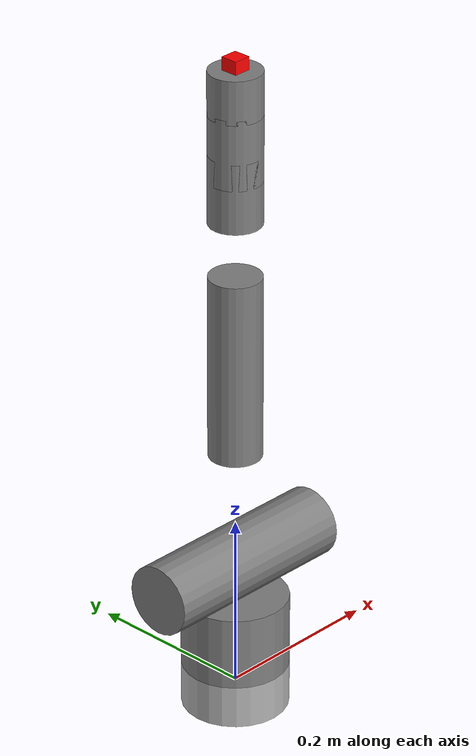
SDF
<?xml version="1.0" ?>
<sdf version="1.6">
  <model name="ur3">
    <link name="base_link">
      <pose>0 0 0 0 0 0</pose>
      <inertial>
        <mass>4.0</mass>
        <inertia>
          <ixx>0.00443333156</ixx>
          <ixy>0</ixy>
          <ixz>0</ixz>
          <iyy>0.00443333156</iyy>
          <iyz>0</iyz>
          <izz>0.0072</izz>
        </inertia>
      </inertial>
      <visual name="base_visual">
        <geometry>
          <cylinder>
            <radius>0.06</radius>
            <length>0.05</length>
          </cylinder>
        </geometry>
        <material>
          <ambient>0.7 0.7 0.7 1.0</ambient>
          <diffuse>0.7 0.7 0.7 1.0</diffuse>
          <specular>0.1 0.1 0.1 1.0</specular>
        </material>
      </visual>
      <collision name="base_collision">
        <geometry>
          <cylinder>
            <radius>0.06</radius>
            <length>0.05</length>
          </cylinder>
        </geometry>
      </collision>
    </link>

    <link name="shoulder_link">
      <pose>0 0 0.0675 0 0 0</pose>
      <inertial>
        <mass>3.7</mass>
        <inertia>
          <ixx>0.010267495893</ixx>
          <ixy>0</ixy>
          <ixz>0</ixz>
          <iyy>0.010267495893</iyy>
          <iyz>0</iyz>
          <izz>0.00666</izz>
        </inertia>
      </inertial>
      <visual name="shoulder_visual">
        <geometry>
          <cylinder>
            <radius>0.06</radius>
            <length>0.085</length>
          </cylinder>
        </geometry>
        <material>
          <ambient>0.5 0.5 0.5 1.0</ambient>
          <diffuse>0.5 0.5 0.5 1.0</diffuse>
          <specular>0.1 0.1 0.1 1.0</specular>
        </material>
      </visual>
      <collision name="shoulder_collision">
        <geometry>
          <cylinder>
            <radius>0.06</radius>
            <length>0.085</length>
          </cylinder>
        </geometry>
      </collision>
    </link>

    <joint name="shoulder_pan_joint" type="revolute">
      <parent>base_link</parent>
      <child>shoulder_link</child>
      <axis>
        <xyz>0 0 1</xyz>
        <limit>
          <lower>-3.14159</lower>
          <upper>3.14159</upper>
          <effort>150.0</effort>
          <velocity>3.14159</velocity>
        </limit>
        <dynamics>
          <damping>0.0</damping>
          <friction>0.0</friction>
        </dynamics>
      </axis>
    </joint>

    <link name="upper_arm_link">
      <pose>0 0 0.1525 0 1.5708 0</pose>
      <inertial>
        <mass>8.393</mass>
        <inertia>
          <ixx>0.22689067591</ixx>
          <ixy>0</ixy>
          <ixz>0</ixz>
          <iyy>0.22689067591</iyy>
          <iyz>0</iyz>
          <izz>0.0151074</izz>
        </inertia>
      </inertial>
      <visual name="upper_arm_visual">
        <geometry>
          <cylinder>
            <radius>0.04</radius>
            <length>0.24</length>
          </cylinder>
        </geometry>
        <material>
          <ambient>0.5 0.5 0.5 1.0</ambient>
          <diffuse>0.5 0.5 0.5 1.0</diffuse>
          <specular>0.1 0.1 0.1 1.0</specular>
        </material>
      </visual>
      <collision name="upper_arm_collision">
        <geometry>
          <cylinder>
            <radius>0.04</radius>
            <length>0.24</length>
          </cylinder>
        </geometry>
      </collision>
    </link>

    <joint name="shoulder_lift_joint" type="revolute">
      <parent>shoulder_link</parent>
      <child>upper_arm_link</child>
      <axis>
        <xyz>0 1 0</xyz>
        <limit>
          <lower>-3.14159</lower>
          <upper>3.14159</upper>
          <effort>150.0</effort>
          <velocity>3.14159</velocity>
        </limit>
        <dynamics>
          <damping>0.0</damping>
          <friction>0.0</friction>
        </dynamics>
      </axis>
    </joint>

    <link name="forearm_link">
      <pose>0 0 0.3925 0 0 0</pose>
      <inertial>
        <mass>2.275</mass>
        <inertia>
          <ixx>0.049443313556</ixx>
          <ixy>0</ixy>
          <ixz>0</ixz>
          <iyy>0.049443313556</iyy>
          <iyz>0</iyz>
          <izz>0.004095</izz>
        </inertia>
      </inertial>
      <visual name="forearm_visual">
        <geometry>
          <cylinder>
            <radius>0.03</radius>
            <length>0.215</length>
          </cylinder>
        </geometry>
        <material>
          <ambient>0.5 0.5 0.5 1.0</ambient>
          <diffuse>0.5 0.5 0.5 1.0</diffuse>
          <specular>0.1 0.1 0.1 1.0</specular>
        </material>
      </visual>
      <collision name="forearm_collision">
        <geometry>
          <cylinder>
            <radius>0.03</radius>
            <length>0.215</length>
          </cylinder>
        </geometry>
      </collision>
    </link>

    <joint name="elbow_joint" type="revolute">
      <parent>upper_arm_link</parent>
      <child>forearm_link</child>
      <axis>
        <xyz>0 1 0</xyz>
        <limit>
          <lower>-3.14159</lower>
          <upper>3.14159</upper>
          <effort>150.0</effort>
          <velocity>3.14159</velocity>
        </limit>
        <dynamics>
          <damping>0.0</damping>
          <friction>0.0</friction>
        </dynamics>
      </axis>
    </joint>

    <link name="wrist_1_link">
      <pose>0 0 0.6025 0 0 0</pose>
      <inertial>
        <mass>1.219</mass>
        <inertia>
          <ixx>0.011752971225</ixx>
          <ixy>0</ixy>
          <ixz>0</ixz>
          <iyy>0.011752971225</iyy>
          <iyz>0</iyz>
          <izz>0.0021942</izz>
        </inertia>
      </inertial>
      <visual name="wrist_1_visual">
        <geometry>
          <cylinder>
            <radius>0.03</radius>
            <length>0.08</length>
          </cylinder>
        </geometry>
        <material>
          <ambient>0.5 0.5 0.5 1.0</ambient>
          <diffuse>0.5 0.5 0.5 1.0</diffuse>
          <specular>0.1 0.1 0.1 1.0</specular>
        </material>
      </visual>
      <collision name="wrist_1_collision">
        <geometry>
          <cylinder>
            <radius>0.03</radius>
            <length>0.08</length>
          </cylinder>
        </geometry>
      </collision>
    </link>

    <joint name="wrist_1_joint" type="revolute">
      <parent>forearm_link</parent>
      <child>wrist_1_link</child>
      <axis>
        <xyz>0 1 0</xyz>
        <limit>
          <lower>-3.14159</lower>
          <upper>3.14159</upper>
          <effort>28.0</effort>
          <velocity>3.14159</velocity>
        </limit>
        <dynamics>
          <damping>0.0</damping>
          <friction>0.0</friction>
        </dynamics>
      </axis>
    </joint>

    <link name="wrist_2_link">
      <pose>0 0 0.6525 0 0 0</pose>
      <inertial>
        <mass>1.219</mass>
        <inertia>
          <ixx>0.011752971225</ixx>
          <ixy>0</ixy>
          <ixz>0</ixz>
          <iyy>0.011752971225</iyy>
          <iyz>0</iyz>
          <izz>0.0021942</izz>
        </inertia>
      </inertial>
      <visual name="wrist_2_visual">
        <geometry>
          <cylinder>
            <radius>0.03</radius>
            <length>0.08</length>
          </cylinder>
        </geometry>
        <material>
          <ambient>0.5 0.5 0.5 1.0</ambient>
          <diffuse>0.5 0.5 0.5 1.0</diffuse>
          <specular>0.1 0.1 0.1 1.0</specular>
        </material>
      </visual>
      <collision name="wrist_2_collision">
        <geometry>
          <cylinder>
            <radius>0.03</radius>
            <length>0.08</length>
          </cylinder>
        </geometry>
      </collision>
    </link>

    <joint name="wrist_2_joint" type="revolute">
      <parent>wrist_1_link</parent>
      <child>wrist_2_link</child>
      <axis>
        <xyz>0 0 1</xyz>
        <limit>
          <lower>-3.14159</lower>
          <upper>3.14159</upper>
          <effort>28.0</effort>
          <velocity>3.14159</velocity>
        </limit>
        <dynamics>
          <damping>0.0</damping>
          <friction>0.0</friction>
        </dynamics>
      </axis>
    </joint>

    <link name="wrist_3_link">
      <pose>0 0 0.7125 0 0 0</pose>
      <inertial>
        <mass>0.1879</mass>
        <inertia>
          <ixx>0.0001</ixx>
          <ixy>0</ixy>
          <ixz>0</ixz>
          <iyy>0.0001</iyy>
          <iyz>0</iyz>
          <izz>0.0001</izz>
        </inertia>
      </inertial>
      <visual name="wrist_3_visual">
        <geometry>
          <cylinder>
            <radius>0.03</radius>
            <length>0.05</length>
          </cylinder>
        </geometry>
        <material>
          <ambient>0.5 0.5 0.5 1.0</ambient>
          <diffuse>0.5 0.5 0.5 1.0</diffuse>
          <specular>0.1 0.1 0.1 1.0</specular>
        </material>
      </visual>
      <collision name="wrist_3_collision">
        <geometry>
          <cylinder>
            <radius>0.03</radius>
            <length>0.05</length>
          </cylinder>
        </geometry>
      </collision>
    </link>

    <joint name="wrist_3_joint" type="revolute">
      <parent>wrist_2_link</parent>
      <child>wrist_3_link</child>
      <axis>
        <xyz>0 1 0</xyz>
        <limit>
          <lower>-3.14159</lower>
          <upper>3.14159</upper>
          <effort>28.0</effort>
          <velocity>3.14159</velocity>
        </limit>
        <dynamics>
          <damping>0.0</damping>
          <friction>0.0</friction>
        </dynamics>
      </axis>
    </joint>

    <link name="ee_link">
      <pose>0 0 0.7425 0 0 0</pose>
      <inertial>
        <mass>0.001</mass>
        <inertia>
          <ixx>0.0001</ixx>
          <ixy>0</ixy>
          <ixz>0</ixz>
          <iyy>0.0001</iyy>
          <iyz>0</iyz>
          <izz>0.0001</izz>
        </inertia>
      </inertial>
      <visual name="ee_visual">
        <geometry>
          <box>
            <size>0.02 0.02 0.02</size>
          </box>
        </geometry>
        <material>
          <ambient>1.0 0.0 0.0 1.0</ambient>
          <diffuse>1.0 0.0 0.0 1.0</diffuse>
          <specular>0.1 0.1 0.1 1.0</specular>
        </material>
      </visual>
    </link>

    <joint name="ee_joint" type="fixed">
      <parent>wrist_3_link</parent>
      <child>ee_link</child>
    </joint>
  </model>
</sdf>
